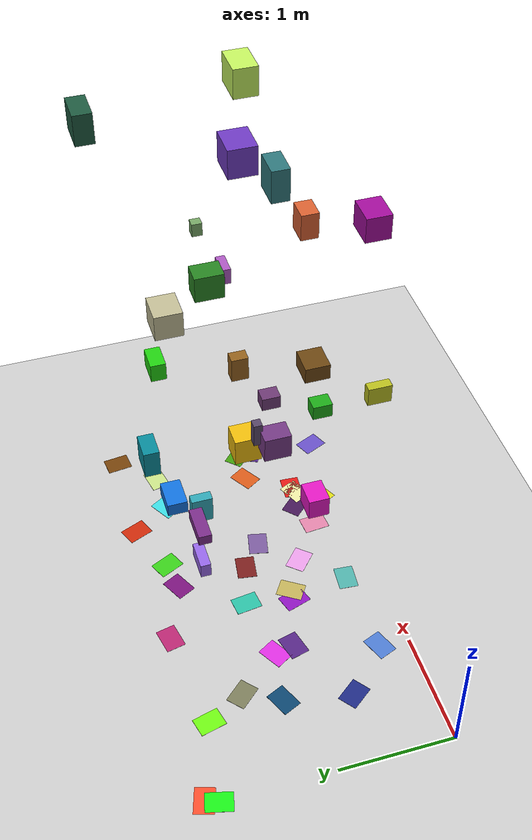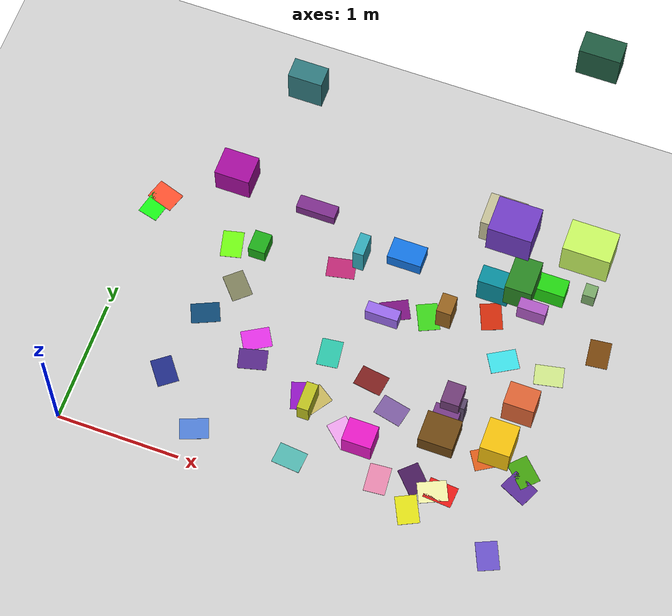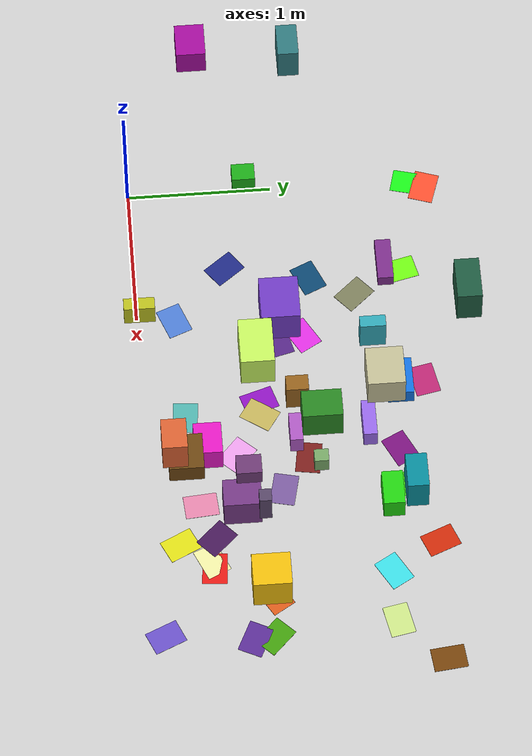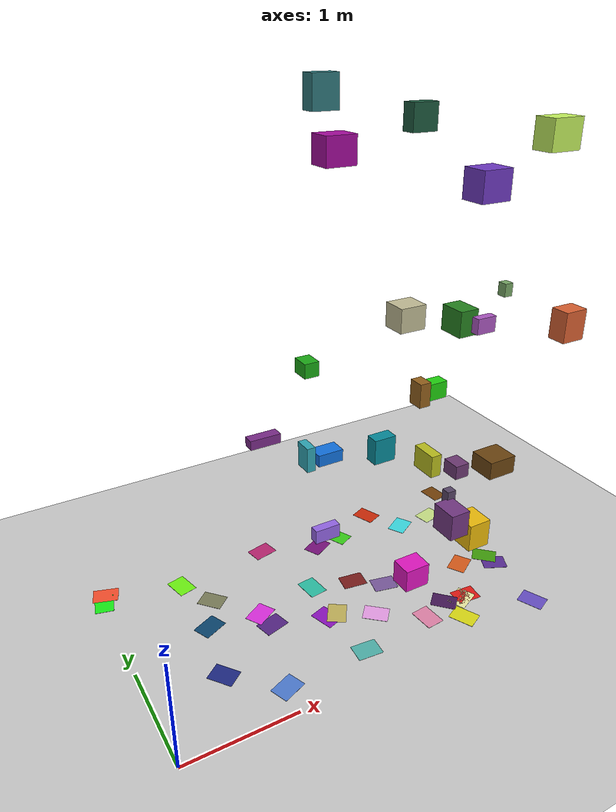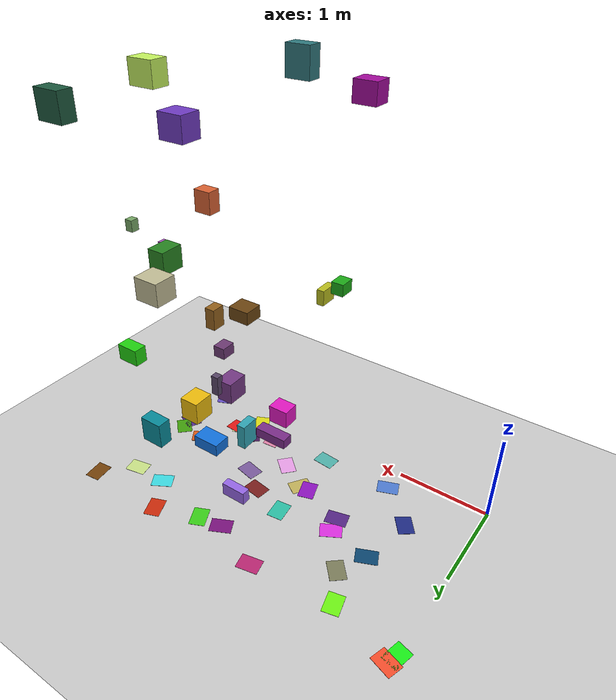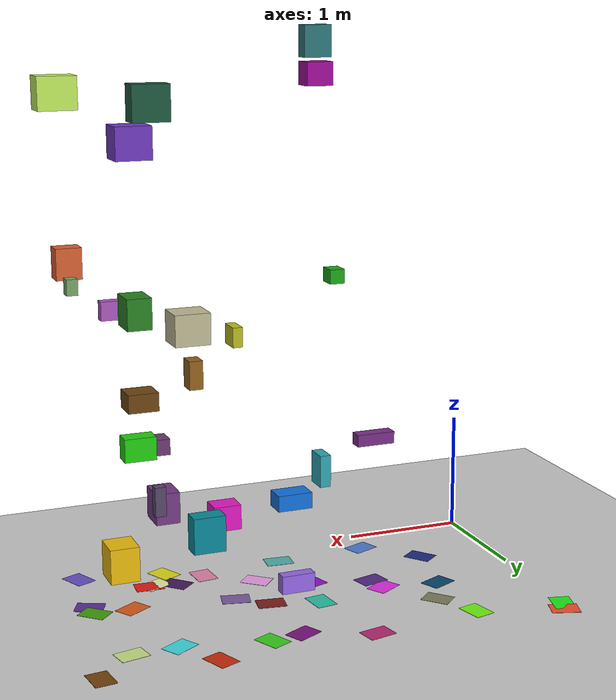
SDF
<sdf version="1.9">
 <world name="default">
  <model name="ground_plane">
   <static>true</static>
   <link name="link">
    <collision name="collision">
     <geometry><plane><normal>0 0 1</normal><size>1 1</size></plane></geometry>
    </collision>
    <visual name="visual">
     <geometry><plane><normal>0 0 1</normal><size>500 500</size></plane></geometry>
     <material>
      <ambient>0.8 0.8 0.8 1</ambient>
      <diffuse>0.8 0.8 0.8 1</diffuse>
      <specular>0.8 0.8 0.8 1</specular>
     </material>
    </visual>
    <inertial>
     <mass>1</mass>
     <inertia><ixx>1</ixx><ixy>0</ixy><ixz>0</ixz><iyy>1</iyy><iyz>0</iyz><izz>1</izz></inertia>
    </inertial>
   </link>
  </model>
  <model name="vio_landmark_6">
   <static>true</static>
   <pose>1.4831283655041034 0.728522143505538 2.5478110621263763 0 0 0</pose>
   <link name="landmark">
    <visual name="box">
     <geometry><box><size>0.11890393353032197 0.14835997160478262 0.11568147973871329</size></box></geometry>
     <material>
      <ambient>0.11163589769376916 0.6633230325681274 0.09389321095978556 1</ambient>
      <diffuse>0.11163589769376916 0.6633230325681274 0.09389321095978556 1</diffuse>
     </material>
    </visual>
    <collision name="box">
     <geometry><box><size>0.11890393353032197 0.14835997160478262 0.11568147973871329</size></box></geometry>
    </collision>
   </link>
  </model>
  <model name="vio_landmark_14">
   <static>true</static>
   <pose>2.914324004980496 1.768856127176063 0.9345027150816548 0 0 0</pose>
   <link name="landmark">
    <visual name="box">
     <geometry><box><size>0.24288364845522614 0.14309681573817928 0.2726296278604774</size></box></geometry>
     <material>
      <ambient>0.0272557635687183 0.5445673920267698 0.6046148435543235 1</ambient>
      <diffuse>0.0272557635687183 0.5445673920267698 0.6046148435543235 1</diffuse>
     </material>
    </visual>
    <collision name="box">
     <geometry><box><size>0.24288364845522614 0.14309681573817928 0.2726296278604774</size></box></geometry>
    </collision>
   </link>
  </model>
  <model name="vio_landmark_17">
   <static>true</static>
   <pose>2.9723412677717187 0.24541378971208516 1.5444273147569592 0 0 0</pose>
   <link name="landmark">
    <visual name="box">
     <geometry><box><size>0.25373327382708044 0.22869288473810662 0.15384134314200507</size></box></geometry>
     <material>
      <ambient>0.4240269102409094 0.2721088240978184 0.06950143325855063 1</ambient>
      <diffuse>0.4240269102409094 0.2721088240978184 0.06950143325855063 1</diffuse>
     </material>
    </visual>
    <collision name="box">
     <geometry><box><size>0.25373327382708044 0.22869288473810662 0.15384134314200507</size></box></geometry>
    </collision>
   </link>
  </model>
  <model name="vio_landmark_18">
   <static>true</static>
   <pose>2.0837793910108786 0.006016419343624069 1.9506165676288618 0 0 0</pose>
   <link name="landmark">
    <visual name="box">
     <geometry><box><size>0.08371064339004683 0.20314879818720438 0.1703626180548887</size></box></geometry>
     <material>
      <ambient>0.7300885676878736 0.7438447353957464 0.12090862782998166 1</ambient>
      <diffuse>0.7300885676878736 0.7438447353957464 0.12090862782998166 1</diffuse>
     </material>
    </visual>
    <collision name="box">
     <geometry><box><size>0.08371064339004683 0.20314879818720438 0.1703626180548887</size></box></geometry>
    </collision>
   </link>
  </model>
  <model name="vio_landmark_26">
   <static>true</static>
   <pose>2.750169797055978 0.9865557846796822 1.9237365728503302 0 0 0</pose>
   <link name="landmark">
    <visual name="box">
     <geometry><box><size>0.10728966252945141 0.14599632911784358 0.2243945958256786</size></box></geometry>
     <material>
      <ambient>0.580250316932675 0.38010491104073696 0.11452073830345558 1</ambient>
      <diffuse>0.580250316932675 0.38010491104073696 0.11452073830345558 1</diffuse>
     </material>
    </visual>
    <collision name="box">
     <geometry><box><size>0.10728966252945141 0.14599632911784358 0.2243945958256786</size></box></geometry>
    </collision>
   </link>
  </model>
  <model name="vio_landmark_30">
   <static>true</static>
   <pose>3.3563616055681846 1.5638573014594703 1.5739994702058235 0 0 0</pose>
   <link name="landmark">
    <visual name="box">
     <geometry><box><size>0.23571970535307957 0.13777670154105431 0.17406757769520725</size></box></geometry>
     <material>
      <ambient>0.13160844029866772 0.8201284231754612 0.06268898098189676 1</ambient>
      <diffuse>0.13160844029866772 0.8201284231754612 0.06268898098189676 1</diffuse>
     </material>
    </visual>
    <collision name="box">
     <geometry><box><size>0.23571970535307957 0.13777670154105431 0.17406757769520725</size></box></geometry>
    </collision>
   </link>
  </model>
  <model name="vio_landmark_32">
   <static>true</static>
   <pose>1.92845142217075 1.5513290943583273 1.2362647036469339 0 0 0</pose>
   <link name="landmark">
    <visual name="box">
     <geometry><box><size>0.08293598186935773 0.1737801280936227 0.2462034905035318</size></box></geometry>
     <material>
      <ambient>0.1900736896334604 0.6520600031852006 0.7124897371366318 1</ambient>
      <diffuse>0.1900736896334604 0.6520600031852006 0.7124897371366318 1</diffuse>
     </material>
    </visual>
    <collision name="box">
     <geometry><box><size>0.08293598186935773 0.1737801280936227 0.2462034905035318</size></box></geometry>
    </collision>
   </link>
  </model>
  <model name="vio_landmark_36">
   <static>true</static>
   <pose>2.955024977277126 1.5322362500653357 2.422620833478087 0 0 0</pose>
   <link name="landmark">
    <visual name="box">
     <geometry><box><size>0.2664184002219221 0.2410646570269417 0.2340169045676363</size></box></geometry>
     <material>
      <ambient>0.757818123038529 0.7363548689226865 0.5849048546472392 1</ambient>
      <diffuse>0.757818123038529 0.7363548689226865 0.5849048546472392 1</diffuse>
     </material>
    </visual>
    <collision name="box">
     <geometry><box><size>0.2664184002219221 0.2410646570269417 0.2340169045676363</size></box></geometry>
    </collision>
   </link>
  </model>
  <model name="vio_landmark_37">
   <static>true</static>
   <pose>3.507200820668017 0.15986446759726602 2.6920301208061086 0 0 0</pose>
   <link name="landmark">
    <visual name="box">
     <geometry><box><size>0.20653081490513003 0.159948517934359 0.25181014141422553</size></box></geometry>
     <material>
      <ambient>0.8508351340360338 0.37960019213555507 0.1958474159538069 1</ambient>
      <diffuse>0.8508351340360338 0.37960019213555507 0.1958474159538069 1</diffuse>
     </material>
    </visual>
    <collision name="box">
     <geometry><box><size>0.20653081490513003 0.159948517934359 0.25181014141422553</size></box></geometry>
    </collision>
   </link>
  </model>
  <model name="vio_landmark_40">
   <static>true</static>
   <pose>2.119984254733663 1.524566563540061 0.3356439581993175 0 0 0</pose>
   <link name="landmark">
    <visual name="box">
     <geometry><box><size>0.2649625439011735 0.09336360494288735 0.14326813207487782</size></box></geometry>
     <material>
      <ambient>0.5881403389640384 0.40540833466791903 0.90759041609077 1</ambient>
      <diffuse>0.5881403389640384 0.40540833466791903 0.90759041609077 1</diffuse>
     </material>
    </visual>
    <collision name="box">
     <geometry><box><size>0.2649625439011735 0.09336360494288735 0.14326813207487782</size></box></geometry>
    </collision>
   </link>
  </model>
  <model name="vio_landmark_41">
   <static>true</static>
   <pose>3.2282319336320873 1.1080849751984534 2.4717950136654503 0 0 0</pose>
   <link name="landmark">
    <visual name="box">
     <geometry><box><size>0.18800117932551896 0.2562590765009938 0.23890877598656307</size></box></geometry>
     <material>
      <ambient>0.15496013744287856 0.5155356887677066 0.12975747347775551 1</ambient>
      <diffuse>0.15496013744287856 0.5155356887677066 0.12975747347775551 1</diffuse>
     </material>
    </visual>
    <collision name="box">
     <geometry><box><size>0.18800117932551896 0.2562590765009938 0.23890877598656307</size></box></geometry>
    </collision>
   </link>
  </model>
  <model name="vio_landmark_42">
   <static>true</static>
   <pose>3.162937873889672 0.8456918673429206 3.6863439603388763 0 0 0</pose>
   <link name="landmark">
    <visual name="box">
     <geometry><box><size>0.28289870767955516 0.24120319859641964 0.25277141106989137</size></box></geometry>
     <material>
      <ambient>0.43199975903268745 0.22701796287610287 0.756865903394399 1</ambient>
      <diffuse>0.43199975903268745 0.22701796287610287 0.756865903394399 1</diffuse>
     </material>
    </visual>
    <collision name="box">
     <geometry><box><size>0.28289870767955516 0.24120319859641964 0.25277141106989137</size></box></geometry>
    </collision>
   </link>
  </model>
  <model name="vio_landmark_43">
   <static>true</static>
   <pose>3.337056943491123 1.977117937079215 4.066271697960626 0 0 0</pose>
   <link name="landmark">
    <visual name="box">
     <geometry><box><size>0.2666188958140629 0.15137420270229573 0.2507936790778713</size></box></geometry>
     <material>
      <ambient>0.11725041563520243 0.3490500552078897 0.2462736465164467 1</ambient>
      <diffuse>0.11725041563520243 0.3490500552078897 0.2462736465164467 1</diffuse>
     </material>
    </visual>
    <collision name="box">
     <geometry><box><size>0.2666188958140629 0.15137420270229573 0.2507936790778713</size></box></geometry>
    </collision>
   </link>
  </model>
  <model name="vio_landmark_48">
   <static>true</static>
   <pose>2.943189883086573 0.6557993878980284 1.281661429757218 0 0 0</pose>
   <link name="landmark">
    <visual name="box">
     <geometry><box><size>0.13734838425503626 0.16850757173754005 0.12865494918498258</size></box></geometry>
     <material>
      <ambient>0.4259428952362182 0.22701319020976318 0.45218683861001424 1</ambient>
      <diffuse>0.4259428952362182 0.22701319020976318 0.45218683861001424 1</diffuse>
     </material>
    </visual>
    <collision name="box">
     <geometry><box><size>0.13734838425503626 0.16850757173754005 0.12865494918498258</size></box></geometry>
    </collision>
   </link>
  </model>
  <model name="vio_landmark_51">
   <static>true</static>
   <pose>3.69037205208929 1.0682172193672423 2.6865934362300257 0 0 0</pose>
   <link name="landmark">
    <visual name="box">
     <geometry><box><size>0.08415508334456676 0.09069993005140227 0.12035465884402766</size></box></geometry>
     <material>
      <ambient>0.465888854929644 0.6500795777224663 0.3985793275665534 1</ambient>
      <diffuse>0.465888854929644 0.6500795777224663 0.3985793275665534 1</diffuse>
     </material>
    </visual>
    <collision name="box">
     <geometry><box><size>0.08415508334456676 0.09069993005140227 0.12035465884402766</size></box></geometry>
    </collision>
   </link>
  </model>
  <model name="vio_landmark_56">
   <static>true</static>
   <pose>3.3061686681510634 0.7775338107553269 0.41107974207691594 0 0 0</pose>
   <link name="landmark">
    <visual name="box">
     <geometry><box><size>0.23478512067020596 0.2602145839024067 0.2827122144455162</size></box></geometry>
     <material>
      <ambient>0.9335803802703628 0.7401567697455856 0.04657622698380791 1</ambient>
      <diffuse>0.9335803802703628 0.7401567697455856 0.04657622698380791 1</diffuse>
     </material>
    </visual>
    <collision name="box">
     <geometry><box><size>0.23478512067020596 0.2602145839024067 0.2827122144455162</size></box></geometry>
    </collision>
   </link>
  </model>
  <model name="vio_landmark_59">
   <static>true</static>
   <pose>2.2335041078319287 1.7097187381388501 1.0825928681740593 0 0 0</pose>
   <link name="landmark">
    <visual name="box">
     <geometry><box><size>0.26436010881807487 0.17035348228000635 0.121369774590012</size></box></geometry>
     <material>
      <ambient>0.07048821169704787 0.44872133245185564 0.8743273631473585 1</ambient>
      <diffuse>0.07048821169704787 0.44872133245185564 0.8743273631473585 1</diffuse>
     </material>
    </visual>
    <collision name="box">
     <geometry><box><size>0.26436010881807487 0.17035348228000635 0.121369774590012</size></box></geometry>
    </collision>
   </link>
  </model>
  <model name="vio_landmark_62">
   <static>true</static>
   <pose>3.6684328158830497 0.6701746571521578 4.048788718164304 0 0 0</pose>
   <link name="landmark">
    <visual name="box">
     <geometry><box><size>0.2969525619800233 0.20548459986511253 0.250017891075423</size></box></geometry>
     <material>
      <ambient>0.767884138302809 0.9454059715774981 0.3709157738439936 1</ambient>
      <diffuse>0.767884138302809 0.9454059715774981 0.3709157738439936 1</diffuse>
     </material>
    </visual>
    <collision name="box">
     <geometry><box><size>0.2969525619800233 0.20548459986511253 0.250017891075423</size></box></geometry>
    </collision>
   </link>
  </model>
  <model name="vio_landmark_65">
   <static>true</static>
   <pose>1.5432735475368966 1.6560715235887118 1.4652607174258914 0 0 0</pose>
   <link name="landmark">
    <visual name="box">
     <geometry><box><size>0.2967858776184216 0.10482432918879499 0.09106643320763799</size></box></geometry>
     <material>
      <ambient>0.48125210002966257 0.1757436316635175 0.5372941864893417 1</ambient>
      <diffuse>0.48125210002966257 0.1757436316635175 0.5372941864893417 1</diffuse>
     </material>
    </visual>
    <collision name="box">
     <geometry><box><size>0.2967858776184216 0.10482432918879499 0.09106643320763799</size></box></geometry>
    </collision>
   </link>
  </model>
  <model name="vio_landmark_68">
   <static>true</static>
   <pose>1.7547675159379668 0.9962486712391598 4.400220655992121 0 0 0</pose>
   <link name="landmark">
    <visual name="box">
     <geometry><box><size>0.21292654404287764 0.12811801718496765 0.2400568400042662</size></box></geometry>
     <material>
      <ambient>0.18420622311969462 0.46863332087311754 0.4862372522233057 1</ambient>
      <diffuse>0.18420622311969462 0.46863332087311754 0.4862372522233057 1</diffuse>
     </material>
    </visual>
    <collision name="box">
     <geometry><box><size>0.21292654404287764 0.12811801718496765 0.2400568400042662</size></box></geometry>
    </collision>
   </link>
  </model>
  <model name="vio_landmark_75">
   <static>true</static>
   <pose>2.328598720910044 0.4177652109895229 0.5332937671944893 0 0 0</pose>
   <link name="landmark">
    <visual name="box">
     <geometry><box><size>0.23138447728735345 0.18955855838418884 0.20919830926599725</size></box></geometry>
     <material>
      <ambient>0.8912934624341763 0.09274802338425939 0.7618480441335428 1</ambient>
      <diffuse>0.8912934624341763 0.09274802338425939 0.7618480441335428 1</diffuse>
     </material>
    </visual>
    <collision name="box">
     <geometry><box><size>0.23138447728735345 0.18955855838418884 0.20919830926599725</size></box></geometry>
    </collision>
   </link>
  </model>
  <model name="vio_landmark_78">
   <static>true</static>
   <pose>2.9016844203503385 0.6116265831534449 0.7696581345843864 0 0 0</pose>
   <link name="landmark">
    <visual name="box">
     <geometry><box><size>0.19527637453623525 0.25477813180879283 0.25615688043517737</size></box></geometry>
     <material>
      <ambient>0.4537644143928002 0.22313431645468393 0.5157879326221021 1</ambient>
      <diffuse>0.4537644143928002 0.22313431645468393 0.5157879326221021 1</diffuse>
     </material>
    </visual>
    <collision name="box">
     <geometry><box><size>0.19527637453623525 0.25477813180879283 0.25615688043517737</size></box></geometry>
    </collision>
   </link>
  </model>
  <model name="vio_landmark_80">
   <static>true</static>
   <pose>1.5086035291742264 0.4102795774445376 4.119066903996896 0 0 0</pose>
   <link name="landmark">
    <visual name="box">
     <geometry><box><size>0.22023577046772397 0.1817966041464627 0.1875453470944511</size></box></geometry>
     <material>
      <ambient>0.6377151827055944 0.04674423059941145 0.6101765908789089 1</ambient>
      <diffuse>0.6377151827055944 0.04674423059941145 0.6101765908789089 1</diffuse>
     </material>
    </visual>
    <collision name="box">
     <geometry><box><size>0.22023577046772397 0.1817966041464627 0.1875453470944511</size></box></geometry>
    </collision>
   </link>
  </model>
  <model name="vio_landmark_86">
   <static>true</static>
   <pose>3.35304810223562 0.9333525533626332 2.459777403028763 0 0 0</pose>
   <link name="landmark">
    <visual name="box">
     <geometry><box><size>0.19505923673335038 0.08081018273487572 0.14528028016574868</size></box></geometry>
     <material>
      <ambient>0.6754439983798154 0.3436491510530393 0.7555979042326448 1</ambient>
      <diffuse>0.6754439983798154 0.3436491510530393 0.7555979042326448 1</diffuse>
     </material>
    </visual>
    <collision name="box">
     <geometry><box><size>0.19505923673335038 0.08081018273487572 0.14528028016574868</size></box></geometry>
    </collision>
   </link>
  </model>
  <model name="vio_landmark_87">
   <static>true</static>
   <pose>2.978690658078749 0.760241812276047 0.8564950997966533 0 0 0</pose>
   <link name="landmark">
    <visual name="box">
     <geometry><box><size>0.08879438989045081 0.08227763013307499 0.24059055659092876</size></box></geometry>
     <material>
      <ambient>0.34225072308403354 0.2737495782183978 0.4037628231611015 1</ambient>
      <diffuse>0.34225072308403354 0.2737495782183978 0.4037628231611015 1</diffuse>
     </material>
    </visual>
    <collision name="box">
     <geometry><box><size>0.08879438989045081 0.08227763013307499 0.24059055659092876</size></box></geometry>
    </collision>
   </link>
  </model>
  <model name="vio_floor_patch_9">
   <static>true</static>
   <pose>3.466755676915078 1.6215850321899152 .002 0 0 -1.3697508786237318</pose>
   <link name="patch">
    <visual name="patch">
     <geometry><box><size>.17 .23 .002</size></box></geometry>
     <material>
      <ambient>0.793963007760577 0.89096564687107 0.5313940358848673 1</ambient>
      <diffuse>0.793963007760577 0.89096564687107 0.5313940358848673 1</diffuse>
     </material>
    </visual>
   </link>
  </model>
  <model name="vio_floor_patch_19">
   <static>true</static>
   <pose>3.2301450149137123 0.8027492580065774 .002 0 0 2.124381956851932</pose>
   <link name="patch">
    <visual name="patch">
     <geometry><box><size>.17 .23 .002</size></box></geometry>
     <material>
      <ambient>0.8570907444658618 0.35924135136960333 0.1045927064634867 1</ambient>
      <diffuse>0.8570907444658618 0.35924135136960333 0.1045927064634867 1</diffuse>
     </material>
    </visual>
   </link>
  </model>
  <model name="vio_floor_patch_22">
   <static>true</static>
   <pose>0.06255541994449432 2.0796297332243094 .002 0 0 1.257679701431519</pose>
   <link name="patch">
    <visual name="patch">
     <geometry><box><size>.17 .23 .002</size></box></geometry>
     <material>
      <ambient>0.979241265769321 0.3112678335649452 0.17944377226601135 1</ambient>
      <diffuse>0.979241265769321 0.3112678335649452 0.17944377226601135 1</diffuse>
     </material>
    </visual>
   </link>
  </model>
  <model name="vio_floor_patch_24">
   <static>true</static>
   <pose>3.0926239864245773 1.6193834507655103 .002 0 0 -1.039558313352663</pose>
   <link name="patch">
    <visual name="patch">
     <geometry><box><size>.17 .23 .002</size></box></geometry>
     <material>
      <ambient>0.23607527617907909 0.86382023335195 0.892819947038447 1</ambient>
      <diffuse>0.23607527617907909 0.86382023335195 0.892819947038447 1</diffuse>
     </material>
    </visual>
   </link>
  </model>
  <model name="vio_floor_patch_26">
   <static>true</static>
   <pose>1.8163546419445649 0.8015714152166691 .002 0 0 -0.5888926923995692</pose>
   <link name="patch">
    <visual name="patch">
     <geometry><box><size>.17 .23 .002</size></box></geometry>
     <material>
      <ambient>0.7665421155083918 0.700373848753282 0.35660268971900044 1</ambient>
      <diffuse>0.7665421155083918 0.700373848753282 0.35660268971900044 1</diffuse>
     </material>
    </visual>
   </link>
  </model>
  <model name="vio_floor_patch_28">
   <static>true</static>
   <pose>2.121938800101937 0.6224982555114869 .002 0 0 0.8421858588661517</pose>
   <link name="patch">
    <visual name="patch">
     <geometry><box><size>.17 .23 .002</size></box></geometry>
     <material>
      <ambient>0.9177525907224804 0.6250548240596924 0.9127395677334804 1</ambient>
      <diffuse>0.9177525907224804 0.6250548240596924 0.9127395677334804 1</diffuse>
     </material>
    </visual>
   </link>
  </model>
  <model name="vio_floor_patch_29">
   <static>true</static>
   <pose>0.7486733537255741 1.213972335834665 .002 0 0 -1.1499239777401706</pose>
   <link name="patch">
    <visual name="patch">
     <geometry><box><size>.17 .23 .002</size></box></geometry>
     <material>
      <ambient>0.04508008264779523 0.27257514174210123 0.43952557877394066 1</ambient>
      <diffuse>0.04508008264779523 0.27257514174210123 0.43952557877394066 1</diffuse>
     </material>
    </visual>
   </link>
  </model>
  <model name="vio_floor_patch_38">
   <static>true</static>
   <pose>1.6230284595385964 1.9509471280416069 .002 0 0 1.7731802219141861</pose>
   <link name="patch">
    <visual name="patch">
     <geometry><box><size>.17 .23 .002</size></box></geometry>
     <material>
      <ambient>0.7319476731224258 0.15126503867496024 0.4489066805025235 1</ambient>
      <diffuse>0.7319476731224258 0.15126503867496024 0.4489066805025235 1</diffuse>
     </material>
    </visual>
   </link>
  </model>
  <model name="vio_floor_patch_41">
   <static>true</static>
   <pose>3.4827640937360247 0.05255687292836164 .002 0 0 0.4165033318783764</pose>
   <link name="patch">
    <visual name="patch">
     <geometry><box><size>.17 .23 .002</size></box></geometry>
     <material>
      <ambient>0.4101727660711432 0.31525277559299697 0.7777805116063455 1</ambient>
      <diffuse>0.4101727660711432 0.31525277559299697 0.7777805116063455 1</diffuse>
     </material>
    </visual>
   </link>
  </model>
  <model name="vio_floor_patch_58">
   <static>true</static>
   <pose>2.4149415717215383 1.7791973940152062 .002 0 0 0.4325943765654774</pose>
   <link name="patch">
    <visual name="patch">
     <geometry><box><size>.17 .23 .002</size></box></geometry>
     <material>
      <ambient>0.22700813801695424 0.8173033048170247 0.10027187054162276 1</ambient>
      <diffuse>0.22700813801695424 0.8173033048170247 0.10027187054162276 1</diffuse>
     </material>
    </visual>
   </link>
  </model>
  <model name="vio_floor_patch_62">
   <static>true</static>
   <pose>1.8053277515601327 0.2887422860542035 .002 0 0 1.4842150992058367</pose>
   <link name="patch">
    <visual name="patch">
     <geometry><box><size>.17 .23 .002</size></box></geometry>
     <material>
      <ambient>0.31519943984926474 0.7005906405608958 0.6743163858120644 1</ambient>
      <diffuse>0.31519943984926474 0.7005906405608958 0.6743163858120644 1</diffuse>
     </material>
    </visual>
   </link>
  </model>
  <model name="vio_floor_patch_63">
   <static>true</static>
   <pose>0.632143041584823 0.6362644366040442 .002 0 0 0.6531659227713744</pose>
   <link name="patch">
    <visual name="patch">
     <geometry><box><size>.17 .23 .002</size></box></geometry>
     <material>
      <ambient>0.12220202941245066 0.16591318894779808 0.5181729284174961 1</ambient>
      <diffuse>0.12220202941245066 0.16591318894779808 0.5181729284174961 1</diffuse>
     </material>
    </visual>
   </link>
  </model>
  <model name="vio_floor_patch_66">
   <static>true</static>
   <pose>2.498384691241668 0.3524820833959339 .002 0 0 -3.05738308958232</pose>
   <link name="patch">
    <visual name="patch">
     <geometry><box><size>.17 .23 .002</size></box></geometry>
     <material>
      <ambient>0.8881717109637124 0.5211842005920597 0.668488666871108 1</ambient>
      <diffuse>0.8881717109637124 0.5211842005920597 0.668488666871108 1</diffuse>
     </material>
    </visual>
   </link>
  </model>
  <model name="vio_floor_patch_68">
   <static>true</static>
   <pose>1.7939222768954697 1.2214222788363518 .002 0 0 0.12158607236196417</pose>
   <link name="patch">
    <visual name="patch">
     <geometry><box><size>.17 .23 .002</size></box></geometry>
     <material>
      <ambient>0.1717951771059718 0.7537550121404171 0.6495276187265316 1</ambient>
      <diffuse>0.1717951771059718 0.7537550121404171 0.6495276187265316 1</diffuse>
     </material>
    </visual>
   </link>
  </model>
  <model name="vio_floor_patch_69">
   <static>true</static>
   <pose>2.4128990259434637 0.9259190245408284 .002 0 0 1.3529526868290565</pose>
   <link name="patch">
    <visual name="patch">
     <geometry><box><size>.17 .23 .002</size></box></geometry>
     <material>
      <ambient>0.48238991886669735 0.35710731690269637 0.6218549283818491 1</ambient>
      <diffuse>0.48238991886669735 0.35710731690269637 0.6218549283818491 1</diffuse>
     </material>
    </visual>
   </link>
  </model>
  <model name="vio_floor_patch_70">
   <static>true</static>
   <pose>2.986247662124603 0.41443804515787264 .002 0 0 -1.6431581121267547</pose>
   <link name="patch">
    <visual name="patch">
     <geometry><box><size>.17 .23 .002</size></box></geometry>
     <material>
      <ambient>0.8977017869572993 0.10472321936007234 0.08997313887766556 1</ambient>
      <diffuse>0.8977017869572993 0.10472321936007234 0.08997313887766556 1</diffuse>
     </material>
    </visual>
   </link>
  </model>
  <model name="vio_floor_patch_76">
   <static>true</static>
   <pose>3.5309441863089397 0.7844580445017879 .002 0 0 -2.343771084491395</pose>
   <link name="patch">
    <visual name="patch">
     <geometry><box><size>.17 .23 .002</size></box></geometry>
     <material>
      <ambient>0.25559397908957476 0.6202882204444388 0.049917886983822296 1</ambient>
      <diffuse>0.25559397908957476 0.6202882204444388 0.049917886983822296 1</diffuse>
     </material>
    </visual>
   </link>
  </model>
  <model name="vio_floor_patch_86">
   <static>true</static>
   <pose>3.5402986492062114 0.6518375566198982 .002 0 0 -2.0156296249010444</pose>
   <link name="patch">
    <visual name="patch">
     <geometry><box><size>.17 .23 .002</size></box></geometry>
     <material>
      <ambient>0.3525867707783967 0.17730128259003095 0.5857087510057827 1</ambient>
      <diffuse>0.3525867707783967 0.17730128259003095 0.5857087510057827 1</diffuse>
     </material>
    </visual>
   </link>
  </model>
  <model name="vio_floor_patch_90">
   <static>true</static>
   <pose>1.2437322560006014 0.9655377339753057 .002 0 0 1.8229499546621013</pose>
   <link name="patch">
    <visual name="patch">
     <geometry><box><size>.17 .23 .002</size></box></geometry>
     <material>
      <ambient>0.33587475864165917 0.1503795394735327 0.5252062024635024 1</ambient>
      <diffuse>0.33587475864165917 0.1503795394735327 0.5252062024635024 1</diffuse>
     </material>
    </visual>
   </link>
  </model>
  <model name="vio_floor_patch_98">
   <static>true</static>
   <pose>2.882891890502994 1.9530943783536125 .002 0 0 0.38481931129817815</pose>
   <link name="patch">
    <visual name="patch">
     <geometry><box><size>.17 .23 .002</size></box></geometry>
     <material>
      <ambient>0.8053490215657749 0.16684029616116786 0.041207883489112085 1</ambient>
      <diffuse>0.8053490215657749 0.16684029616116786 0.041207883489112085 1</diffuse>
     </material>
    </visual>
   </link>
  </model>
  <model name="vio_floor_patch_105">
   <static>true</static>
   <pose>3.7775296185633813 1.9313433186508258 .002 0 0 -3.0298458973166205</pose>
   <link name="patch">
    <visual name="patch">
     <geometry><box><size>.17 .23 .002</size></box></geometry>
     <material>
      <ambient>0.4603875504976728 0.2615180755375407 0.04330711278054686 1</ambient>
      <diffuse>0.4603875504976728 0.2615180755375407 0.04330711278054686 1</diffuse>
     </material>
    </visual>
   </link>
  </model>
  <model name="vio_floor_patch_110">
   <static>true</static>
   <pose>0.7282186871354999 1.854038791374423 .002 0 0 0.23590020403339285</pose>
   <link name="patch">
    <visual name="patch">
     <geometry><box><size>.17 .23 .002</size></box></geometry>
     <material>
      <ambient>0.43900981313926063 0.9708230605326694 0.07319735515787591 1</ambient>
      <diffuse>0.43900981313926063 0.9708230605326694 0.07319735515787591 1</diffuse>
     </material>
    </visual>
   </link>
  </model>
  <model name="vio_floor_patch_122">
   <static>true</static>
   <pose>0.9021084395100867 1.5229137292108774 .002 0 0 -2.416928062342628</pose>
   <link name="patch">
    <visual name="patch">
     <geometry><box><size>.17 .23 .002</size></box></geometry>
     <material>
      <ambient>0.48745499502152806 0.4947415790829944 0.3582274038594641 1</ambient>
      <diffuse>0.48745499502152806 0.4947415790829944 0.3582274038594641 1</diffuse>
     </material>
    </visual>
   </link>
  </model>
  <model name="vio_floor_patch_131">
   <static>true</static>
   <pose>2.151303773529694 1.7415896888215379 .002 0 0 2.038620573314294</pose>
   <link name="patch">
    <visual name="patch">
     <geometry><box><size>.17 .23 .002</size></box></geometry>
     <material>
      <ambient>0.4778371030481625 0.07215310632940873 0.4904332689999539 1</ambient>
      <diffuse>0.4778371030481625 0.07215310632940873 0.4904332689999539 1</diffuse>
     </material>
    </visual>
   </link>
  </model>
  <model name="vio_floor_patch_132">
   <static>true</static>
   <pose>1.2087343081463364 1.1380037251409076 .002 0 0 -1.040493724241812</pose>
   <link name="patch">
    <visual name="patch">
     <geometry><box><size>.17 .23 .002</size></box></geometry>
     <material>
      <ambient>0.8747758720563626 0.18679357658826826 0.8850086999063446 1</ambient>
      <diffuse>0.8747758720563626 0.18679357658826826 0.8850086999063446 1</diffuse>
     </material>
    </visual>
   </link>
  </model>
  <model name="vio_floor_patch_136">
   <static>true</static>
   <pose>1.712340992909265 0.8041419737165514 .002 0 0 -2.8352555086279905</pose>
   <link name="patch">
    <visual name="patch">
     <geometry><box><size>.17 .23 .002</size></box></geometry>
     <material>
      <ambient>0.5586142701227325 0.0764238201086421 0.7532251691165345 1</ambient>
      <diffuse>0.5586142701227325 0.0764238201086421 0.7532251691165345 1</diffuse>
     </material>
    </visual>
   </link>
  </model>
  <model name="vio_floor_patch_138">
   <static>true</static>
   <pose>2.7927903958900195 0.1957488297822323 .002 0 0 -2.6889607038485197</pose>
   <link name="patch">
    <visual name="patch">
     <geometry><box><size>.17 .23 .002</size></box></geometry>
     <material>
      <ambient>0.8711513972232833 0.8652999354638351 0.08820863838050905 1</ambient>
      <diffuse>0.8711513972232833 0.8652999354638351 0.08820863838050905 1</diffuse>
     </material>
    </visual>
   </link>
  </model>
  <model name="vio_floor_patch_140">
   <static>true</static>
   <pose>2.9261646783690898 0.3994198183877957 .002 0 0 -1.1417449663352848</pose>
   <link name="patch">
    <visual name="patch">
     <geometry><box><size>.17 .23 .002</size></box></geometry>
     <material>
      <ambient>0.9354169286892837 0.9325213614536898 0.6502841952001926 1</ambient>
      <diffuse>0.9354169286892837 0.9325213614536898 0.6502841952001926 1</diffuse>
     </material>
    </visual>
   </link>
  </model>
  <model name="vio_floor_patch_151">
   <static>true</static>
   <pose>1.0274799107831916 0.26127860471154385 .002 0 0 1.9448973909755778</pose>
   <link name="patch">
    <visual name="patch">
     <geometry><box><size>.17 .23 .002</size></box></geometry>
     <material>
      <ambient>0.30678950019091356 0.4885974019163812 0.8261714218687592 1</ambient>
      <diffuse>0.30678950019091356 0.4885974019163812 0.8261714218687592 1</diffuse>
     </material>
    </visual>
   </link>
  </model>
  <model name="vio_floor_patch_152">
   <static>true</static>
   <pose>2.7594575814781406 0.44505670151929966 .002 0 0 0.7565332088096182</pose>
   <link name="patch">
    <visual name="patch">
     <geometry><box><size>.17 .23 .002</size></box></geometry>
     <material>
      <ambient>0.27254095954748403 0.09753740724032628 0.3471650265707198 1</ambient>
      <diffuse>0.27254095954748403 0.09753740724032628 0.3471650265707198 1</diffuse>
     </material>
    </visual>
   </link>
  </model>
  <model name="vio_floor_patch_155">
   <static>true</static>
   <pose>0.018544477218206623 1.9729228950836193 .002 0 0 2.8923305644114277</pose>
   <link name="patch">
    <visual name="patch">
     <geometry><box><size>.17 .23 .002</size></box></geometry>
     <material>
      <ambient>0.09813848864794082 0.9536622648808551 0.09561015205363933 1</ambient>
      <diffuse>0.09813848864794082 0.9536622648808551 0.09561015205363933 1</diffuse>
     </material>
    </visual>
   </link>
  </model>
  <model name="vio_floor_patch_158">
   <static>true</static>
   <pose>2.1787301950278337 1.1108414290604758 .002 0 0 -1.7204744872693527</pose>
   <link name="patch">
    <visual name="patch">
     <geometry><box><size>.17 .23 .002</size></box></geometry>
     <material>
      <ambient>0.4850634090084571 0.12199279152695759 0.11666232396982494 1</ambient>
      <diffuse>0.4850634090084571 0.12199279152695759 0.11666232396982494 1</diffuse>
     </material>
    </visual>
   </link>
  </model>
 </world>
</sdf>
